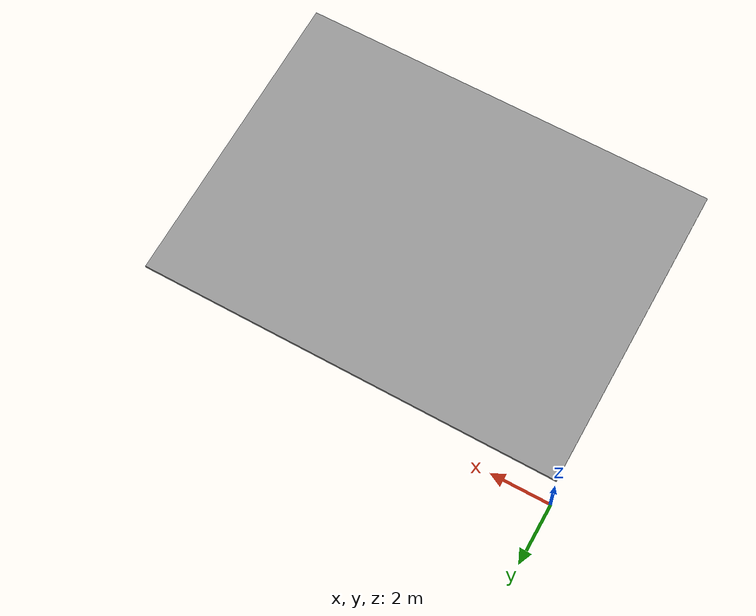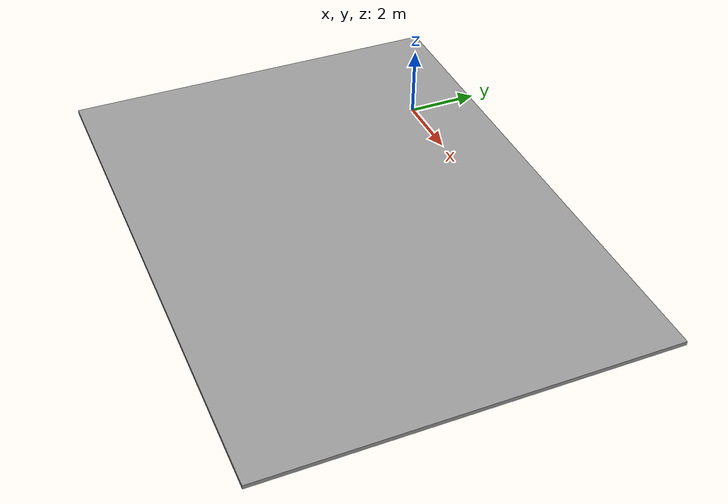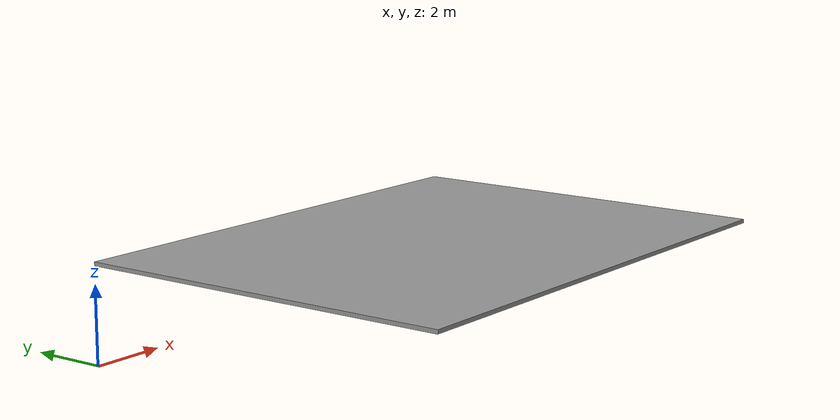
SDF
<?xml version='1.0'?>
<sdf version='1.7'>
  <model name='celling1'>
    <link name='link'>
      <self_collide>0</self_collide>
      <enable_wind>0</enable_wind>
      <kinematic>0</kinematic>
      <pose>6.75 -4.95 2.5 0 -0 0</pose>
      <gravity>1</gravity>
      <visual name='visual'>
        <geometry>
          <box>
            <size>13.5 9.9 0.1</size>
          </box>
        </geometry>
        <material>
          <script>
            <name>Gazebo/Grey</name>
            <uri>file://media/materials/scripts/gazebo.material</uri>
          </script>
          <shader type='pixel'>
            <normal_map>__default__</normal_map>
          </shader>
          <ambient>0.3 0.3 0.3 1</ambient>
          <diffuse>0.7 0.7 0.7 1</diffuse>
          <emissive>0.5 0.5 0.5 1</emissive>
        </material>
        <pose>0 0 0 0 -0 0</pose>
        <transparency>0</transparency>
        <cast_shadows>1</cast_shadows>
      </visual>
    </link>
    <static>0</static>
    <allow_auto_disable>1</allow_auto_disable>
  </model>
</sdf>
